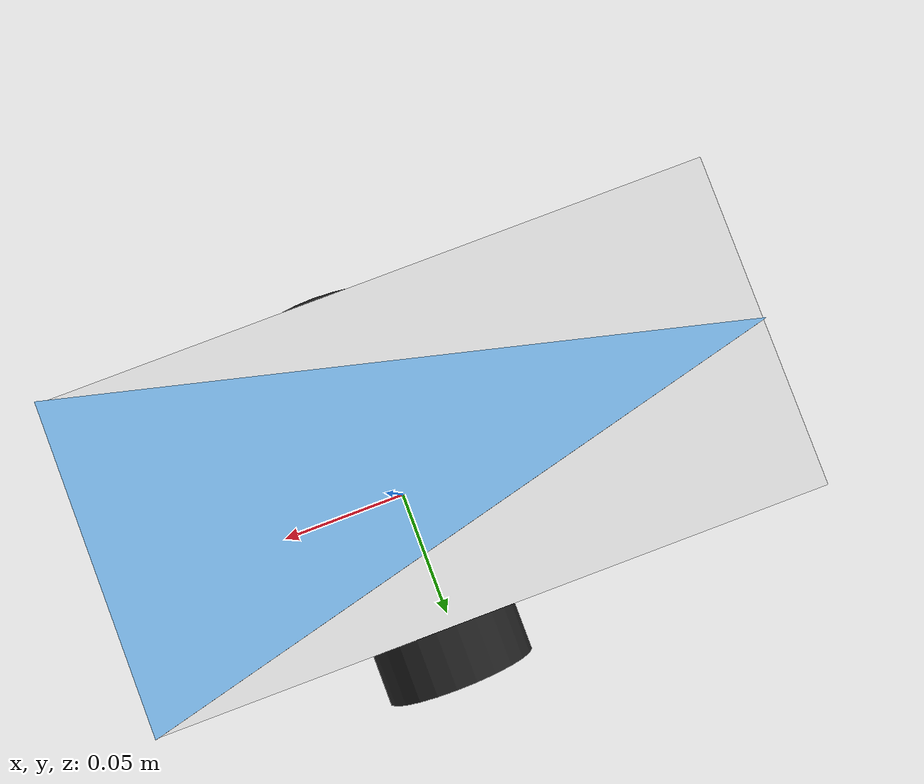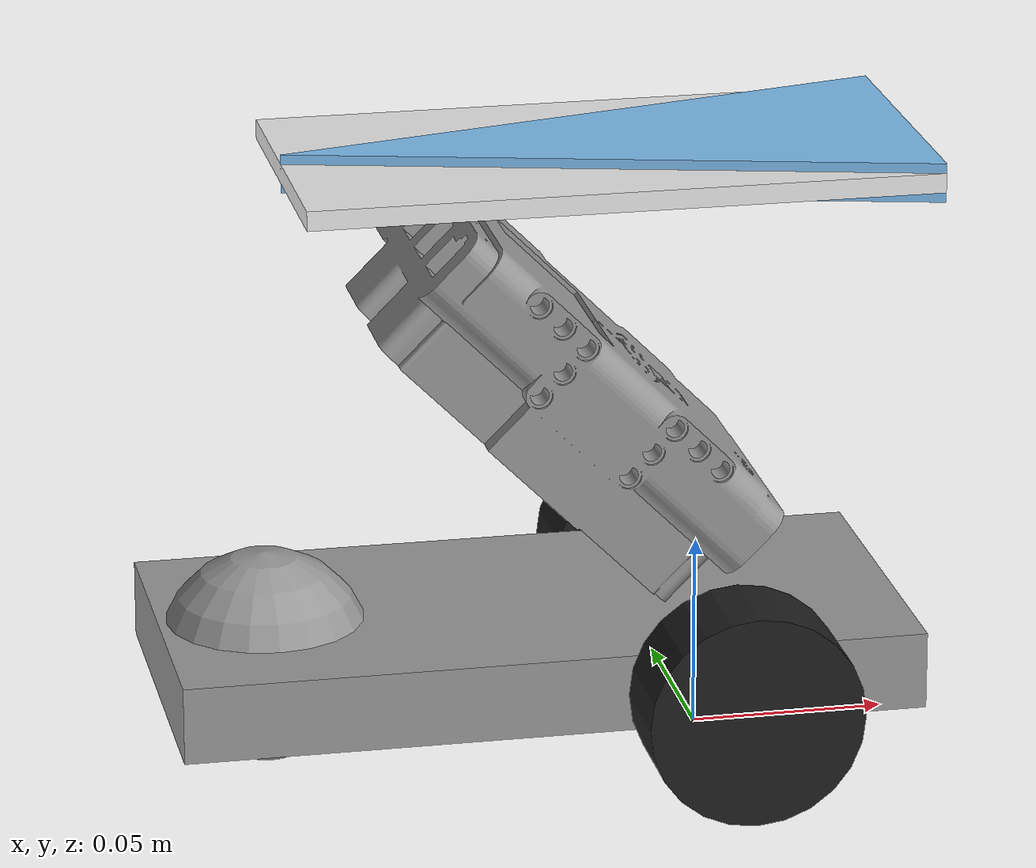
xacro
<?xml version='1.0'?>

<robot name="my_robot" xmlns:xacro="http://www.ros.org/wiki/xacro">
  <xacro:include filename="$(find lego_robot)/urdf/my_robot.gazebo" />

  <xacro:property name="wheel_radius" value="0.0275" />
  <xacro:property name="wheel_width" value="0.025" />
  <xacro:property name="footprint_width"  value="0.09" />
  <xacro:property name="footprint_height"  value="0.02" />
  <xacro:property name="footprint_length" value="0.19" />
  <xacro:property name="axel_dx" value="0.05" />
  <xacro:property name="triangle_b" value="0.08" />
  <xacro:property name="triangle_h" value="0.16" />
  <xacro:property name="triangle_z" value="0.16" />
  <xacro:property name="triangle_dx" value="0.005" />

  <link name="robot_footprint"></link>

  <joint name="robot_footprint_joint" type="fixed">
    <origin xyz="0 0 0" rpy="0 0 0" />
    <parent link="robot_footprint"/>
    <child link="chassis" />
  </joint>

  <link name='chassis'>
    <inertial>
      <mass value="5.0"/>
      <origin xyz="${-footprint_length/2 + axel_dx} 0 0" rpy=" 0 0 0"/>
      <inertia
          ixx="0.001" ixy="0" ixz="0"
          iyy="0.001" iyz="0"
          izz="0.001"
      />
    </inertial>

    <collision name='chassis_collision'>
      <origin xyz="${-footprint_length/2 + axel_dx} 0 ${wheel_radius}" rpy=" 0 0 0"/>
      <geometry>
        <box size="${footprint_length} ${footprint_width} ${footprint_height}"/>
      </geometry>
    </collision>

    <visual name='chassis_visual'>
      <origin xyz="${-footprint_length/2 + axel_dx} 0 ${wheel_radius}" rpy=" 0 0 0"/>
      <geometry>
        <box size="${footprint_length} ${footprint_width} ${footprint_height}"/>
      </geometry>
    </visual>

     <collision name='back_caster_collision'>
      <origin xyz="${-footprint_length + axel_dx + wheel_radius} 0 ${wheel_radius}" rpy=" 0 0 0"/>
      <geometry>
        <sphere radius="${wheel_radius}"/>
      </geometry>
      <surface>
        <friction>
          <ode>
            <mu>0</mu>
            <mu2>0</mu2>
            <slip1>1.0</slip1>
            <slip2>1.0</slip2>
          </ode>
        </friction>
      </surface>
    </collision>

    <visual name='back_caster_visual'>
      <origin xyz="${-footprint_length + axel_dx + wheel_radius} 0 ${wheel_radius}" rpy=" 0 0 0"/>
      <geometry>
        <sphere radius="${wheel_radius}"/>
      </geometry>
    </visual>
  </link>

  <joint name="robot_NXT20_joint" type="fixed">
    <origin xyz="0 0 0" rpy="0 0 0" />
    <parent link="chassis"/>
    <child link="NXT20" />
  </joint>

  <link name="NXT20">
    <visual name='NXT20_visual'>
      <origin xyz="-0.05 0 ${triangle_z/2}" rpy="-0.7853 0 -1.5707"/>
      <geometry>

        <mesh filename="package://lego_robot/media/models/Lego_MindstormsNXT20.stl"  scale="0.001 0.001 0.001"/>
        <!--box size="${triangle_h} ${triangle_b} 0.005"/-->
      </geometry>
    </visual>
  </link>

  <joint name="robot_top_layer_joint" type="fixed">
    <origin xyz="0 0 0" rpy="0 0 0" />
    <parent link="chassis"/>
    <child link="top_layer" />
  </joint>
  <link name="top_layer">
      <collision name='top_layer_collision'>
      <origin xyz="${-triangle_h/6} 0 ${triangle_z - 0.005}" rpy=" 0 0 0"/>
      <geometry>
        <box size="${triangle_h} ${triangle_b} 0.005"/>
      </geometry>
    </collision>

    <visual name='top_layer_visual'>
     <origin xyz="${-triangle_h/6} 0 ${triangle_z - 0.005}" rpy=" 0 0 0"/>
      <geometry>
        <box size="${triangle_h} ${triangle_b} 0.005"/>
      </geometry>
    </visual>
  </link>

  <joint name="robot_top_triangle_joint" type="fixed">
    <origin xyz="0 0 0" rpy="0 0 0" />
    <parent link="chassis"/>
    <child link="top_triangle" />
  </joint>
  <link name="top_triangle">
      <collision name='top_layer_collision'>
      <origin xyz="${-triangle_h/6 + triangle_h/2 } 0 ${triangle_z - 0.0025}" rpy=" 0 0 3.1415"/>
      <geometry>
        <box size="${triangle_h} ${triangle_b} 0.005"/>
      </geometry>
    </collision>

    <visual name='top_triangle_visual'>
      <origin xyz="${-triangle_h/6 + triangle_h/2} 0.04 ${triangle_z - 0.01}" rpy=" 0 0 3.1415"/>
      <geometry>
        <mesh filename="package://lego_robot/media/models/triangle.STL"  scale="0.001 0.001 0.001"/>
      </geometry>
    </visual>
  </link>

  <link name="left_wheel">
    <collision name='left_wheel_collision'>
      <origin xyz="0 ${wheel_width/2} 0" rpy="0 1.5707 1.5707"/>
      <geometry>
        <cylinder radius="${wheel_radius}" length="${wheel_width}"/>
      </geometry>
      <surface>
        <friction>
          <ode>
            <mu>0</mu>
            <mu2>0</mu2>
            <slip1>1.0</slip1>
            <slip2>1.0</slip2>
          </ode>
        </friction>
      </surface>
    </collision>

    <visual name='left_wheel_visual'>
      <origin xyz="0 ${wheel_width/2} 0" rpy="0 1.5707 1.5707"/>
      <geometry>
        <cylinder radius="${wheel_radius}" length="${wheel_width}"/>
      </geometry>
    </visual>

    <inertial>
      <mass value="1"/>
      <origin xyz="0.0 0 0" rpy="0 1.5707 1.5707"/>
      <inertia
          ixx="0.0001" ixy="0" ixz="0"
          iyy="0.0001" iyz="0"
          izz="0.003"
      />
    </inertial>
  </link>

  <link name="right_wheel">
    <collision name='right_wheel_collision'>
      <origin xyz="0 ${-wheel_width/2} 0" rpy="0 1.5707 1.5707"/>
      <geometry>
        <cylinder radius="${wheel_radius}" length="${wheel_width}"/>
      </geometry>
    </collision>
    <surface>
      <friction>
        <ode>
          <mu>0</mu>
          <mu2>0</mu2>
          <slip1>1.0</slip1>
          <slip2>1.0</slip2>
        </ode>
      </friction>
    </surface>
    <visual name='right_wheel_visual'>
      <origin xyz="0 ${-wheel_width/2} 0" rpy="0 1.5707 1.5707"/>
      <geometry>
        <cylinder radius="${wheel_radius}" length="${wheel_width}"/>
      </geometry>
    </visual>

    <inertial>
      <mass value="1"/>
      <origin xyz="0.0 0 0" rpy="0 1.5707 1.5707"/>
      <inertia
          ixx="0.0001" ixy="0" ixz="0"
          iyy="0.0001" iyz="0"
          izz="0.003"
      />
    </inertial>
  </link>

  <joint type="fixed" name="left_wheel_hinge">
    <origin xyz="0 ${footprint_width/2 + 0.001} ${wheel_radius}" rpy="0 0 0"/>
    <child link="left_wheel"/>
    <parent link="chassis"/>
  </joint>

  <joint type="fixed" name="right_wheel_hinge">
    <origin xyz="0 ${-footprint_width/2 - 0.001} ${wheel_radius}" rpy="0 0 0"/>
    <child link="right_wheel"/>
    <parent link="chassis"/>
  </joint>

<gazebo reference="left_wheel">
    <material>Gazebo/Black</material>
</gazebo>

<gazebo reference="right_wheel">
    <material>Gazebo/Black</material>
</gazebo>

<gazebo reference="chassis">
    <material>Gazebo/Grey</material>
</gazebo>

<gazebo reference="NXT20">
    <material>Gazebo/Grey</material>
</gazebo>

<gazebo reference="top_triangle">
    <material>Gazebo/SkyBlue</material>
</gazebo>

<gazebo reference="top_layer">
    <material>Gazebo/White</material>
</gazebo>

<gazebo reference="camera">
    <material>Gazebo/Red</material>
</gazebo>

</robot>
